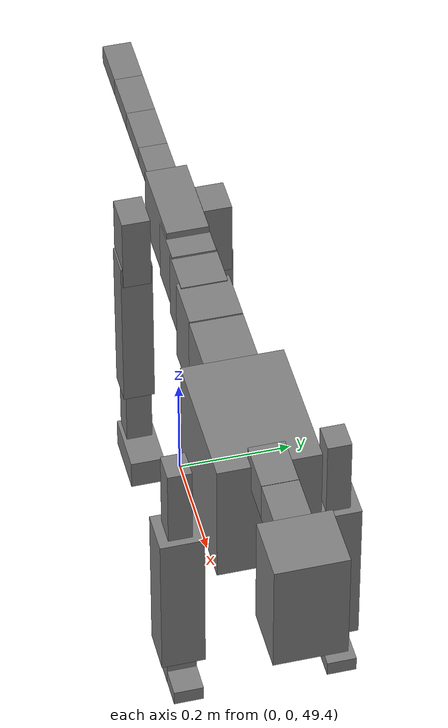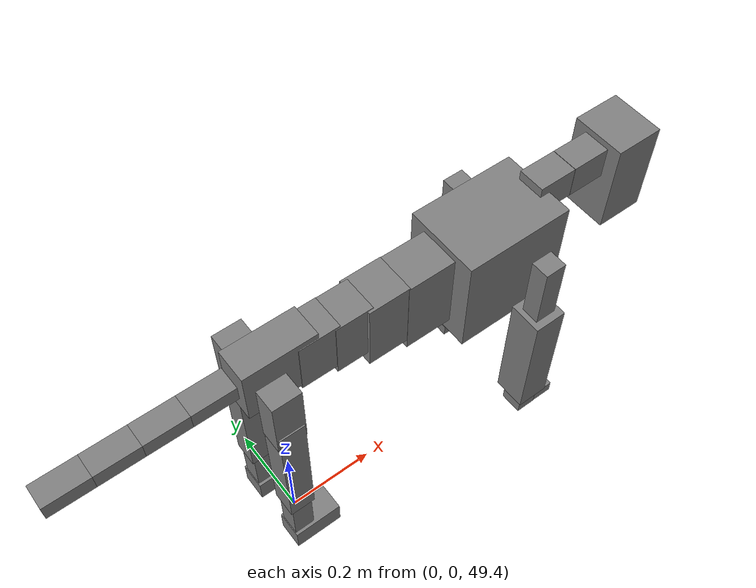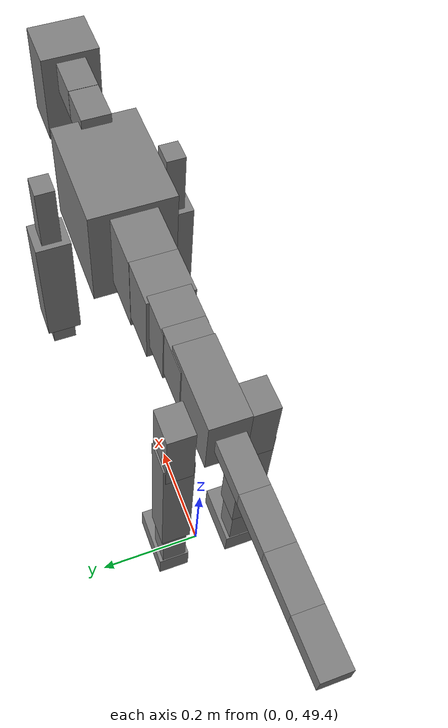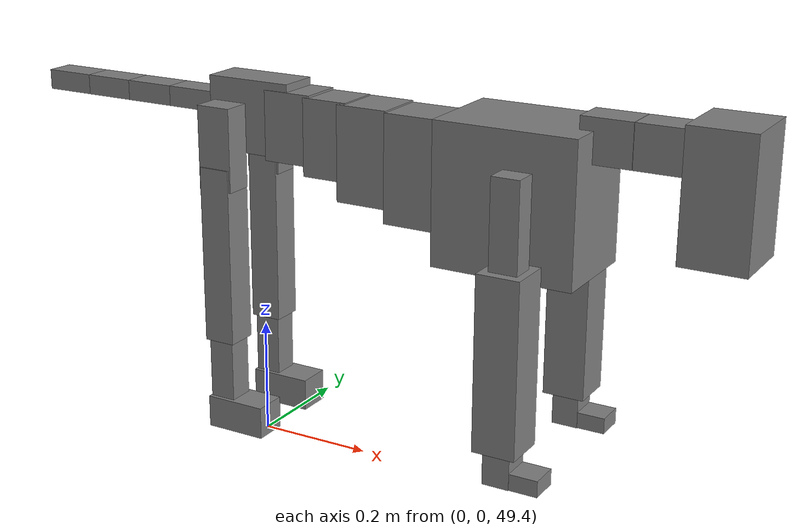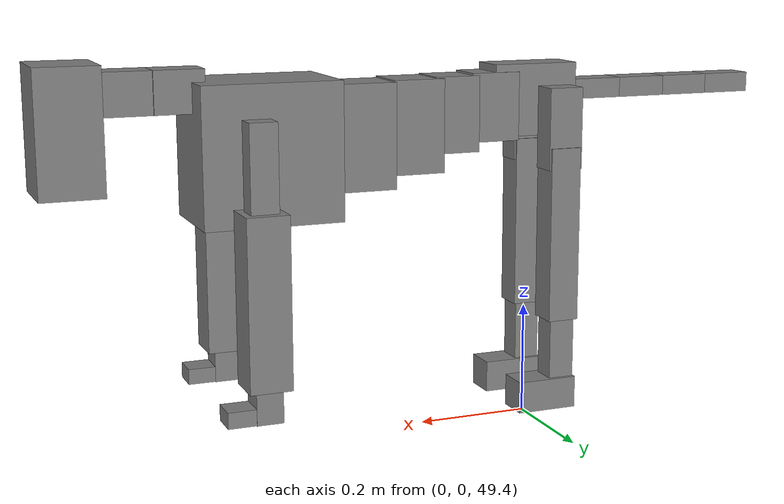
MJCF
<mujoco model="dog">

    <default>
        <joint armature="0.02" stiffness="1" damping="0.2" limited="true"/>
        <geom condim="3" friction="1 0.05 0.05" margin="0.01"/>
        <motor ctrllimited="true" ctrlrange="-1.0 1.0" forcelimited="true" gear="50"/>
    </default>

    <compiler inertiafromgeom="true" angle="radian"/>

    <option timestep="0.016" iterations="50" tolerance="1e-10" solver="Newton" jacobian="dense" cone="pyramidal"/>

    <size nconmax="20000" njmax="60000" nstack="5000000"/>
    <visual>
        <map force="0.1" zfar="30"/>
        <rgba haze="0.15 0.25 0.35 1"/>
        <quality shadowsize="2048"/>
        <global offwidth="800" offheight="800"/>
    </visual>

    <asset>
        <texture type="skybox" builtin="gradient" rgb1="0.3 0.5 0.7" rgb2="0 0 0" width="512" height="512"/>
        <texture name="texplane" type="2d" builtin="checker" rgb1=".2 .3 .4" rgb2=".1 0.15 0.2" width="512" height="512"
                 mark="cross" markrgb=".8 .8 .8"/>
        <texture name="texgeom" type="cube" builtin="flat" mark="cross" width="127" height="1278" rgb1="0.8 0.6 0.4"
                 rgb2="0.8 0.6 0.4" markrgb="1 1 1" random="0.01"/>

        <material name="matplane" reflectance="0.3" texture="texplane" texrepeat="1 1" texuniform="true"/>
        <material name="matgeom" texture="texgeom" texuniform="true" rgba="0.8 0.6 .4 1"/>
    </asset>

    <worldbody>
        <geom name="floor" pos="0 0 0" size="0 0 .25" type="plane" material="matplane" condim="3"/>

        <light directional="false" diffuse=".2 .2 .2" specular="0 0 0" pos="0 0 5" dir="0 0 -1" castshadow="false"/>
        <light mode="targetbodycom" target="torso" directional="false" diffuse=".8 .8 .8" specular="0.3 0.3 0.3"
               pos="0 0 4.0" dir="0 0 -1"/>

        <body name="root" pos="0 0 50">
            <freejoint name="root_1"/>
            <geom type="box" pos="0 0 -0.02" size="0.0774  0.0358  0.063" density="2030"/>

            <body name="spine1" pos="0.054 0 0">
                <joint name="spine1_y" axis="0 1 0" range="0 0.7" limited="true"/>
                <geom type="box" pos="0.02375 0 -0.03" size="0.04375  0.0375  0.05985" density="2030"/>

                <body name="spine2" pos="0.0612 0 0">
                    <joint name="spine2_y" axis="0 1 0" range="-0.15 0.15" limited="true"/>
                    <geom type="box" pos="0.03555  0  -0.04" size="0.04055  0.039  0.06615" density="2030"/>

                    <body name="spine3" pos="0.0730 0 0">
                        <joint name="spine3_y" axis="0 1 0" range="-0.15 0.15" limited="true"/>
                        <geom type="box" pos="0.03555  0  -0.057" size="0.04555  0.0445  0.081" density="2030"/>

                        <body name="spine4" pos="0.0780 0 0">
                            <joint name="spine4_y" axis="0 1 0" range="-0.15 0.15" limited="true"/>
                            <geom type="box" pos="0.05265  0  -0.07" size="0.05265  0.045  0.09135" density="2030"/>

                            <body name="torso" pos="0.1082 0 0">
                                <joint name="torso_y" axis="0 1 0" range="-0.15 0.15" limited="true"/>
                                <geom type="box" pos="0.11925  0  -0.085" size="0.11925  0.085  0.11745"
                                      density="2030"/>

                                <body name="neck1" pos="0.2160  0   0.0180">
                                    <joint name="neck1_y" axis="0 1 0" range="-1.2  -1" limited="true"/>
                                    <geom type="box" pos="0.0423  0  0" size="0.0423  0.03  0.036" density="2325"/>

                                    <body name="neck2" pos="0.0853  0  0">
                                        <joint name="neck2_y" axis="0 1 0" range="0.1  0" limited="true"/>
                                        <geom type="box" pos="0.0423  0  0" size="0.0423  0.03  0.036" density="2325"/>

                                        <body name="head" pos="0.0853  0  0">
                                            <joint name="head_y" axis="0 1 0" range="-0.3  -0.2" limited="true"/>
                                            <geom type="box" pos="0.0531  0  -0.055" size="0.0531  0.06  0.1044"
                                                  density="4030"/>

                                        </body>
                                    </body>
                                </body>

                                <body name="front_shoulder" pos="0.156  0   -0.0480">
                                    <joint name="front_shoulder_y" axis="0 1 0" range="-1 1.5" limited="true"/>
                                    <geom type="box" pos="0 0.13 -0.0598" size="0.0236  0.0202  0.0865" density="1158"/>
                                    <geom type="box" pos="0 -0.13 -0.0598" size="0.0236  0.0202  0.0865"
                                          density="1158"/>

                                    <body name="front_elbow" pos="0  0  -0.1197">
                                        <joint name="front_elbow_y" axis="0 1 0" range="-2 0" limited="true"/>
                                        <geom type="box" pos="0 0.13 -0.1444" size="0.0360  0.0368  0.1444"
                                              density="1081"/>
                                        <geom type="box" pos="0 -0.13 -0.1444" size="0.0360  0.0368  0.1444"
                                              density="1081"/>

                                        <body name="front_wrist" pos="0  0  -0.2888">
                                            <joint name="front_wrist_y" axis="0 1 0" range="-0.2 0" limited="true"/>
                                            <geom type="box" pos="0 0.13 -0.0215" size="0.0227  0.0252  0.0346"
                                                  density="1664"/>
                                            <geom type="box" pos="0 -0.13 -0.0215" size="0.0227  0.0252  0.0346"
                                                  density="1664"/>

                                            <body name="front_finger_end" pos="0  0  -0.0430">
                                                <joint name="front_finger_y" axis="0 1 0" range="-0.4 1"
                                                       limited="true"/>
                                                <geom type="box" pos="0.0250  0.13  0.0013"
                                                      size="0.0458  0.0250  0.0137" density="1515"/>
                                                <geom type="box" pos="0.0250  -0.13  0.0013"
                                                      size="0.0458  0.0250  0.0137" density="1515"/>

                                            </body>

                                        </body>
                                    </body>
                                </body>

                            </body>
                        </body>
                    </body>
                </body>
            </body>

            <body name="back_hip" pos="-0.03 0 -0.018">
                <joint name="back_hip_y" axis="0 1 0" range="-1.5 0.3" limited="true"/>
                <geom type="box" pos="0 0.07 -0.0488" size="0.0309  0.0243  0.0716" density="1154"/>
                <geom type="box" pos="0 -0.07 -0.0488" size="0.0309  0.0243  0.0716" density="1154"/>

                <body name="back_knee" pos="0  0  -0.0975">
                    <joint name="back_knee_y" axis="0 1 0" range="0 2.8" limited="true"/>
                    <geom type="box" pos="0 0.07 -0.1387" size="0.0278  0.0274  0.1542" density="1227"/>
                    <geom type="box" pos="0 -0.07 -0.1387" size="0.0278  0.0274  0.1542" density="1227"/>

                    <body name="back_ankle" pos="0  0  -0.2773">
                        <joint name="back_ankle_y" axis="0 1 0" range="-2.2 0" limited="true"/>
                        <geom type="box" pos="0 0.07 -0.0682" size="0.0228  0.0228  0.0794" density="1284"/>
                        <geom type="box" pos="0 -0.07 -0.0682" size="0.0228  0.0228  0.0794" density="1284"/>

                        <body name="back_toe_end" pos="0  0  -0.1364">
                            <joint name="back_toe_y" axis="0 1 0" range="-0.4 1" limited="true"/>
                            <geom type="box" pos="0.0296  0.07  -0.0131" size="0.0543  0.0296  0.0281" density="1515"/>
                            <geom type="box" pos="0.0296  -0.07  -0.0131" size="0.0543  0.0296  0.0281" density="1515"/>

                        </body>
                    </body>
                </body>
            </body>

            <body name="tail1" pos="-0.074 0 -0.006">
                <joint name="tail1_y" axis="0 1 0" range="-0.2 0.2" limited="true"/>
                <geom type="box" pos="-0.0536  0  0" size="0.045  0.025  0.0175" density="1587"/>

                <body name="tail2" pos="-0.09 0 0">
                    <joint name="tail2_y" axis="0 1 0" range="-0.2 0.2" limited="true"/>
                    <geom type="box" pos="-0.0536  0  0" size="0.045  0.025  0.0175" density="1587"/>

                    <body name="tail3" pos="-0.09 0 0">
                        <joint name="tail3_y" axis="0 1 0" range="-0.2 0.2" limited="true"/>
                        <geom type="box" pos="-0.0536  0  0" size="0.045  0.025  0.0175" density="1587"/>

                        <body name="tail4" pos="-0.09 0 0">
                            <joint name="tail4_y" axis="0 1 0" range="-0.2 0.2" limited="true"/>
                            <geom type="box" pos="-0.0536  0  0" size="0.045  0.025  0.0175" density="1587"/>

                        </body>
                    </body>
                </body>
            </body>
        </body>
    </worldbody>

    <actuator>
        <motor joint="spine1_y" forcerange="-150 150     "/>
        <motor joint="spine2_y" forcerange="-150 150     "/>
        <motor joint="spine3_y" forcerange="-150 150     "/>
        <motor joint="spine4_y" forcerange="-150 150     "/>
        <motor joint="torso_y" forcerange="-150 150     "/>
        <motor joint="neck1_y" forcerange="-100 100       "/>
        <motor joint="neck2_y" forcerange="-100 100       "/>
        <motor joint="head_y" forcerange="-150 150       "/>
        <motor joint="front_shoulder_y" forcerange="-104.10 130.34"/>
        <motor joint="front_elbow_y" forcerange="-170.57 197.00"/>
        <motor joint="front_wrist_y" forcerange="-73.77 127.63"/>
        <motor joint="front_finger_y" forcerange="-23.71 69.57"/>
        <motor joint="back_hip_y" forcerange="-249.34 274.26"/>
        <motor joint="back_knee_y" forcerange="-339.12 259.20"/>
        <motor joint="back_angle_y" forcerange="-94.35 170.51"/>
        <motor joint="back_toe_y" forcerange="-33.63 123.15"/>
        <motor joint="tail1_y" forcerange="-50 50     "/>
        <motor joint="tail2_y" forcerange="-50 50     "/>
        <motor joint="tail3_y" forcerange="-50 50     "/>
        <motor joint="tail4_y" forcerange="-50 50     "/>
    </actuator>
</mujoco>
